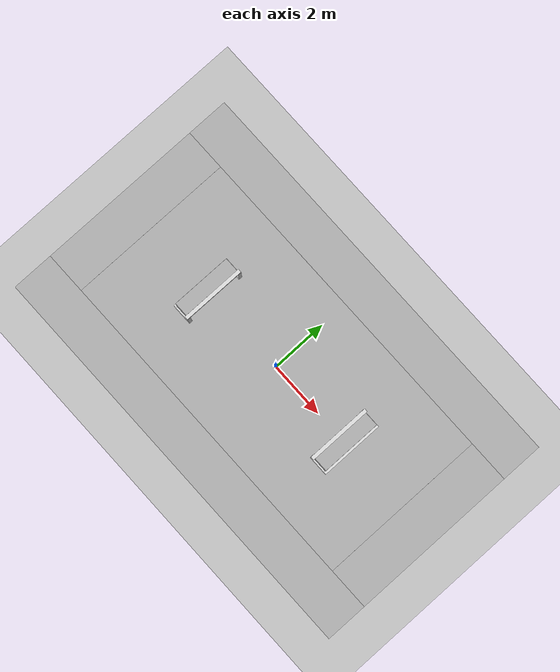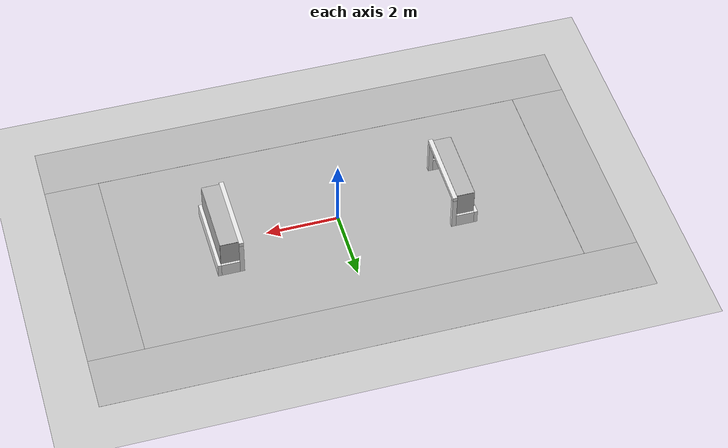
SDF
<sdf version="1.4">
 <world name="default">
  <gravity>0 0 -50</gravity>
  <include><uri>model://ground_plane</uri></include>
  <include><uri>model://sun</uri></include>
  <include>
   <uri>file:///home/kimbring2/catkin_ws/src/deepsoccer/deepsoccer_gazebo/models/RoboCup15_MSL_Field</uri>
   <name>field</name>
   <static>true</static>
  </include>
  <include>
   <pose>-3 0 0.01 0 0 3.14</pose>
   <uri>file:///home/kimbring2/catkin_ws/src/deepsoccer/deepsoccer_gazebo/models/RoboCup15_MSL_Goal</uri>
   <name>left_goal</name>
   <static>true</static>
  </include>
  <include>
   <pose>3 0 0.01 0 0 0</pose>
   <uri>file:///home/kimbring2/catkin_ws/src/deepsoccer/deepsoccer_gazebo/models/RoboCup15_MSL_Goal</uri>
   <name>right_goal</name>
   <static>true</static>
  </include>
 </world>
</sdf>

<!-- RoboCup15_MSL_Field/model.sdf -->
<sdf version="1.4">
  <model name="RoboCup15_MSL_Field">
    <static>true</static>

    <link name="chassis">
      <pose>0 0 0.01 0 0 0</pose>
      <collision name="collision">
        <geometry>
          <plane>
            <normal>0 0 1</normal>
            <size>12 8</size>
          </plane>
        </geometry>
        <surface>
          <friction>
            <ode>
              <mu>50</mu>
              <mu2>25</mu2>
            </ode>
          </friction>
        </surface>
      </collision>

      <visual name="carpet">
        <cast_shadows>false</cast_shadows>
        <geometry>
          <plane>
            <normal>0 0 1</normal>
            <size>12 8</size>
          </plane>
        </geometry>
        <material>
          <script>
            <uri>file:///home/kimbring2/catkin_ws/src/jetbot/jetbot_gazebo/materials/scripts/</uri>
            <uri>file:///home/kimbring2/catkin_ws/src/jetbot/jetbot_gazebo/materials/textures/</uri>
            <name>RoboCup/Carpet</name>
          </script>
        </material>
      </visual>

       <visual name="base1">
        <pose>0 3.75 0.01 0 0 0</pose>
        <cast_shadows>false</cast_shadows>
        <geometry>
          <plane>
            <normal>0 0 1</normal>
            <size>15.0 1.5</size>
          </plane>
        </geometry>
        <material>
          <script>
            <uri>file:///home/kimbring2/catkin_ws/src/jetbot/jetbot_gazebo/materials/scripts/</uri>
            <uri>file:///home/kimbring2/catkin_ws/src/jetbot/jetbot_gazebo/materials/textures/</uri>
            <name>RoboCup/FieldBorder</name>
          </script>
        </material>
      </visual>
      <visual name="base2">
        <pose>0 -3.75 0.01 0 0 0</pose>
        <cast_shadows>false</cast_shadows>
        <geometry>
          <plane>
            <normal>0 0 1</normal>
            <size>15.0 1.5</size>
          </plane>
        </geometry>
        <material>
          <script>
            <uri>file:///home/kimbring2/catkin_ws/src/jetbot/jetbot_gazebo/materials/scripts/</uri>
            <uri>file:///home/kimbring2/catkin_ws/src/jetbot/jetbot_gazebo/materials/textures/</uri>
            <name>RoboCup/FieldBorder</name>
          </script>
        </material>
      </visual>
      <visual name="base3">
        <pose>6.75 0 0.01 0 0 0</pose>
        <cast_shadows>false</cast_shadows>
        <geometry>
          <plane>
            <normal>0 0 1</normal>
            <size>1.5 6.0</size>
          </plane>
        </geometry>
        <material>
          <script>
            <uri>file:///home/kimbring2/catkin_ws/src/jetbot/jetbot_gazebo/materials/scripts/</uri>
            <uri>file:///home/kimbring2/catkin_ws/src/jetbot/jetbot_gazebo/materials/textures/</uri>
            <name>RoboCup/FieldBorder</name>
          </script>
        </material>
      </visual>
      <visual name="base4">
        <pose>-6.75 0 0.01 0 0 0</pose>
        <cast_shadows>false</cast_shadows>
        <geometry>
          <plane>
            <normal>0 0 1</normal>
            <size>1.5 6.0</size>
          </plane>
        </geometry>
        <material>
          <script>
            <uri>file:///home/kimbring2/catkin_ws/src/jetbot/jetbot_gazebo/materials/scripts/</uri>
            <uri>file:///home/kimbring2/catkin_ws/src/jetbot/jetbot_gazebo/materials/textures/</uri>
            <name>RoboCup/FieldBorder</name>
          </script>
        </material>
      </visual>
    </link>

  </model>
</sdf>

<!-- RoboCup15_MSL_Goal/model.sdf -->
<sdf version="1.4">
  <model name="RoboCup15_MSL_Goal">
    <static>true</static>

    <link name="left_post">
      <pose>-0.0625 1.0625 0.5 0 0 0</pose>
      <collision name="collision">
        <geometry>
          <box><size>0.125 0.125 1.0</size></box>
        </geometry>
      </collision>
      <visual name="visual">
        <geometry>
          <box><size>0.125 0.125 1.0</size></box>
        </geometry>
        <material>
          <script>
            <uri>file:///home/kimbring2/catkin_ws/src/jetbot/jetbot_gazebo/materials/scripts/gazebo.material</uri>
            <name>Gazebo/White</name>
          </script>
        </material>
      </visual>
    </link>

    <link name="right_post">
      <pose>-0.0625 -1.0625 0.5 0 0 0</pose>
      <collision name="collision">
        <geometry>
          <box><size>0.125 0.125 1.0</size></box>
        </geometry>
      </collision>
      <visual name="visual">
        <geometry>
          <box><size>0.125 0.125 1.0</size></box>
        </geometry>
        <material>
          <script>
            <uri>file:///home/kimbring2/catkin_ws/src/jetbot/jetbot_gazebo/materials/scripts/gazebo.material</uri>
            <name>Gazebo/White</name>
          </script>
        </material>
      </visual>
    </link>

    <link name="crossbar">
      <pose>-0.0625 0 1.0625 0 0 0</pose>
      <collision name="collision">
        <geometry>
          <box><size>0.125 2.25 0.125</size></box>
        </geometry>
      </collision>
      <visual name="visual">
        <geometry>
          <box><size>0.125 2.25 0.125</size></box>
        </geometry>
        <material>
          <script>
            <uri>file:///home/kimbring2/catkin_ws/src/jetbot/jetbot_gazebo/materials/scripts/gazebo.material</uri>
            <name>Gazebo/White</name>
          </script>
        </material>
      </visual>
    </link>

    <link name="left_support_horiz_lower">
      <pose>0.25 1.0625 0.2 0 0 0</pose>
      <collision name="collision">
        <geometry>
          <box><size>0.5 0.125 0.4</size></box>
        </geometry>
      </collision>
      <visual name="visual">
        <geometry>
          <box><size>0.5 0.125 0.4</size></box>
        </geometry>
        <material>
          <script>
            <uri>file:///home/kimbring2/catkin_ws/src/jetbot/jetbot_gazebo/materials/scripts/gazebo.material</uri>
            <name>Gazebo/White</name>
          </script>
        </material>
      </visual>
    </link>

    <link name="right_support_horiz_lower">
      <pose>0.25 -1.0625 0.2 0 0 0</pose>
      <collision name="collision">
        <geometry>
          <box><size>0.5 0.125 0.4</size></box>
        </geometry>
      </collision>
      <visual name="visual">
        <geometry>
          <box><size>0.5 0.125 0.4</size></box>
        </geometry>
        <material>
          <script>
            <uri>file://media/materials/scripts/gazebo.material</uri>
            <name>Gazebo/White</name>
          </script>
        </material>
      </visual>
    </link>

        <link name="center_support_horiz_lower">
      <pose>0.55 0 0.2 0 0 0</pose>
      <collision name="collision">
        <geometry>
          <box><size>0.10 2.25 0.4</size></box>
        </geometry>
      </collision>
      <visual name="visual">
        <geometry>
          <box><size>0.10 2.25 0.4</size></box>
        </geometry>
        <material>
          <script>
            <uri>file:///home/kimbring2/catkin_ws/src/jetbot/jetbot_gazebo/materials/scripts/gazebo.material</uri>
            <name>Gazebo/White</name>
          </script>
        </material>
      </visual>
    </link>

    <link name="center_net">
      <pose>0.5 0 0.7625 0 0 0</pose>
      <collision name="collision">
        <geometry>
          <box><size>0.01 2.125 0.725</size></box>
        </geometry>
      </collision>
      <visual name="visual">
        <geometry>
          <box><size>0.01 2.125 0.725</size></box>
        </geometry>
        <material>
          <script>
            <uri>file:///home/kimbring2/catkin_ws/src/jetbot/jetbot_gazebo/materials/scripts/</uri>
            <uri>file:///home/kimbring2/catkin_ws/src/jetbot/jetbot_gazebo/materials/textures/</uri>
            <name>RoboCup/Net</name>
          </script>
        </material>
      </visual>
    </link>

    <link name="left_net">
      <pose>0.25 1.0625 0.7625 0 0 0</pose>
      <collision name="collision">
        <geometry>
          <box>
            <size>0.5 0.01 0.725</size>
          </box>
        </geometry>
      </collision>
      <visual name="visual">
        <geometry>
          <box>
            <size>0.5 0.01 0.725</size>
          </box>
        </geometry>
        <material>
          <script>
            <uri>file:///home/kimbring2/catkin_ws/src/jetbot/jetbot_gazebo/materials/scripts/</uri>
            <uri>file:///home/kimbring2/catkin_ws/src/jetbot/jetbot_gazebo/materials/textures/</uri>
            <name>RoboCup/Net</name>
          </script>
        </material>
      </visual>
    </link>

    <link name="right_net">
      <pose>0.25 -1.0625 0.7625 0 0 0</pose>
      <collision name="collision">
        <geometry>
          <box>
            <size>0.5 0.01 0.725</size>
          </box>
        </geometry>
      </collision>
      <visual name="visual">
        <geometry>
          <box>
            <size>0.5 0.01 0.725</size>
          </box>
        </geometry>
        <material>
          <script>
            <uri>file:///home/kimbring2/catkin_ws/src/jetbot/jetbot_gazebo/materials/scripts/</uri>
            <uri>file:///home/kimbring2/catkin_ws/src/jetbot/jetbot_gazebo/materials/textures/</uri>
            <name>RoboCup/Net</name>
          </script>
        </material>
      </visual>
    </link>

    <link name='upper_net'>
      <pose>0.25 0 1.125 0 0 0</pose>
      <collision name='collision'>
        <geometry>
          <box><size>0.5 2.125 0.01</size></box>
        </geometry>
        <max_contacts>10</max_contacts>
      </collision>
      <visual name='visual'>
        <geometry>
          <box><size>0.5 2.125 0.01</size></box>
        </geometry>
        <material>
          <script>
            <uri>file:///home/kimbring2/catkin_ws/src/jetbot/jetbot_gazebo/materials/scripts/</uri>
            <uri>file:///home/kimbring2/catkin_ws/src/jetbot/jetbot_gazebo/materials/textures/</uri>
            <name>RoboCup/Net</name>
          </script>
        </material>
      </visual>
    </link>

  </model>
</sdf>
